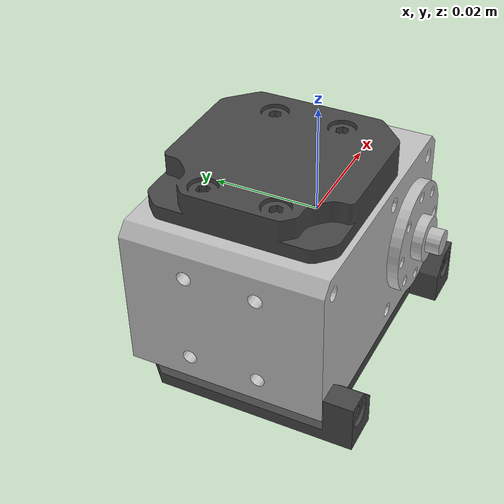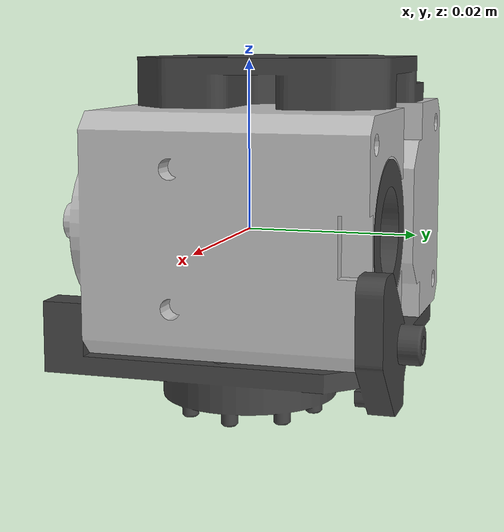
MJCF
<mujoco model="PAN_TILT_2">
  <default>
    <default class="visual">
      <geom group="2" type="mesh" contype="0" conaffinity="0"/>
    </default>
    <default class="collision">
      <geom group="3" type="mesh"/>
    </default>
  </default>
  <asset>
    <material name="191,191,191" specular="0.0" shininess="0.225" rgba="0.749020 0.749020 0.749020 1.000000"/>
    <material name="69,69,69" specular="0.0" shininess="0.225" rgba="0.270588 0.270588 0.270588 1.000000"/>
    <material name="69,69,69.006" specular="0.0" shininess="0.225" rgba="0.270588 0.270588 0.270588 1.000000"/>
    <mesh file="PAN_TILT_2_0.obj"/>
    <mesh file="PAN_TILT_2_1.obj"/>
    <mesh file="PAN_TILT_2_2.obj"/>
  </asset>
  <worldbody>
    <body name="PAN_TILT_2">
      <geom mesh="PAN_TILT_2_0" material="69,69,69" class="visual"/>
      <geom mesh="PAN_TILT_2_1" material="191,191,191" class="visual"/>
      <geom mesh="PAN_TILT_2_2" material="69,69,69.006" class="visual"/>
      <geom mesh="PAN_TILT_2_0" class="collision"/>
      <geom mesh="PAN_TILT_2_1" class="collision"/>
      <geom mesh="PAN_TILT_2_2" class="collision"/>
    </body>
  </worldbody>
</mujoco>
